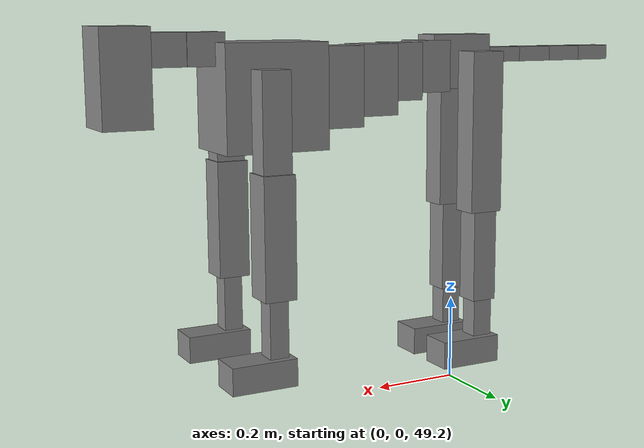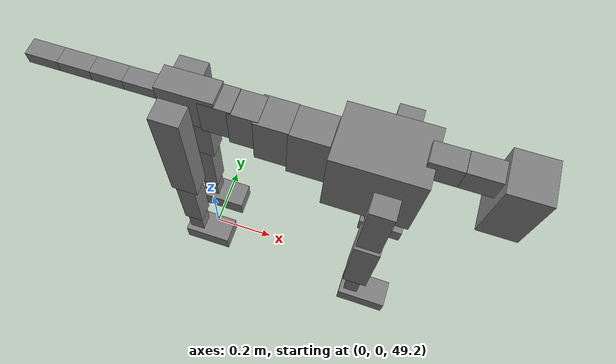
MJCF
<mujoco model="dog">

    <default>
        <joint armature="0.02" stiffness="1" damping="0.2" limited="true"/>
        <geom condim="3" friction="1 0.05 0.05" margin="0.01"/>
        <motor ctrllimited="true" ctrlrange="-1.0 1.0" forcelimited="true" gear="50"/>
    </default>

    <compiler inertiafromgeom="true" angle="radian"/>

    <option timestep="0.016" iterations="50" tolerance="1e-10" solver="Newton" jacobian="dense" cone="pyramidal"/>

    <size nconmax="20000" njmax="60000" nstack="5000000"/>
    <visual>
        <map force="0.1" zfar="30"/>
        <rgba haze="0.15 0.25 0.35 1"/>
        <quality shadowsize="2048"/>
        <global offwidth="800" offheight="800"/>
    </visual>

    <asset>
        <texture type="skybox" builtin="gradient" rgb1="0.3 0.5 0.7" rgb2="0 0 0" width="512" height="512"/>
        <texture name="texplane" type="2d" builtin="checker" rgb1=".2 .3 .4" rgb2=".1 0.15 0.2" width="512" height="512"
                 mark="cross" markrgb=".8 .8 .8"/>
        <texture name="texgeom" type="cube" builtin="flat" mark="cross" width="127" height="1278" rgb1="0.8 0.6 0.4"
                 rgb2="0.8 0.6 0.4" markrgb="1 1 1" random="0.01"/>

        <material name="matplane" reflectance="0.3" texture="texplane" texrepeat="1 1" texuniform="true"/>
        <material name="matgeom" texture="texgeom" texuniform="true" rgba="0.8 0.6 .4 1"/>
    </asset>

    <worldbody>
        <geom name="floor" pos="0 0 0" size="0 0 .25" type="plane" material="matplane" condim="3"/>

        <light directional="false" diffuse=".2 .2 .2" specular="0 0 0" pos="0 0 5" dir="0 0 -1" castshadow="false"/>
        <light mode="targetbodycom" target="torso" directional="false" diffuse=".8 .8 .8" specular="0.3 0.3 0.3"
               pos="0 0 4.0" dir="0 0 -1"/>

        <body name="root" pos="0 0 50">
            <freejoint name="root_1"/>
            <geom type="box" pos="0 0 -0.02" size="0.0774  0.0358  0.063" density="2030"/>

            <body name="spine1" pos="0.054 0 0">
                <joint name="spine1_y" axis="0 1 0" range="0 0.7" limited="true"/>
                <geom type="box" pos="0.02375 0 -0.03" size="0.04375  0.0375  0.05985" density="2030"/>

                <body name="spine2" pos="0.0612 0 0">
                    <joint name="spine2_y" axis="0 1 0" range="-0.15 0.15" limited="true"/>
                    <geom type="box" pos="0.03555  0  -0.04" size="0.04055  0.039  0.06615" density="2030"/>

                    <body name="spine3" pos="0.0730 0 0">
                        <joint name="spine3_y" axis="0 1 0" range="-0.15 0.15" limited="true"/>
                        <geom type="box" pos="0.03555  0  -0.057" size="0.04555  0.0445  0.081" density="2030"/>

                        <body name="spine4" pos="0.0780 0 0">
                            <joint name="spine4_y" axis="0 1 0" range="-0.15 0.15" limited="true"/>
                            <geom type="box" pos="0.05265  0  -0.07" size="0.05265  0.045  0.09135" density="2030"/>

                            <body name="torso" pos="0.1082 0 0">
                                <joint name="torso_y" axis="0 1 0" range="-0.15 0.15" limited="true"/>
                                <geom type="box" pos="0.11925  0  -0.085" size="0.11925  0.085  0.11745"
                                      density="2030"/>

                                <body name="neck1" pos="0.2160  0   0.0180">
                                    <joint name="neck1_y" axis="0 1 0" range="-1.2  -1" limited="true"/>
                                    <geom type="box" pos="0.0423  0  0" size="0.0423  0.03  0.036" density="2325"/>

                                    <body name="neck2" pos="0.0853  0  0">
                                        <joint name="neck2_y" axis="0 1 0" range="0.1  0" limited="true"/>
                                        <geom type="box" pos="0.0423  0  0" size="0.0423  0.03  0.036" density="2325"/>

                                        <body name="head" pos="0.0853  0  0">
                                            <joint name="head_y" axis="0 1 0" range="-0.3  -0.2" limited="true"/>
                                            <geom type="box" pos="0.0531  0  -0.055" size="0.0531  0.06  0.1044"
                                                  density="4030"/>

                                        </body>
                                    </body>
                                </body>

                                <body name="front_shoulder" pos="0.156  0   -0.0480">
                                    <joint name="front_shoulder_y" axis="0 1 0" range="-1 1.5" limited="true"/>
                                    <geom type="box" pos="0 0.13 -0.0951" size="0.0329  0.0282  0.1217" density="1158"/>
                                    <geom type="box" pos="0 -0.13 -0.0951" size="0.0329  0.0282  0.1217"
                                          density="1158"/>

                                    <body name="front_elbow" pos="0  0  -0.1901">
                                        <joint name="front_elbow_y" axis="0 1 0" range="-2 0" limited="true"/>
                                        <geom type="box" pos="0 0.13 -0.1342" size="0.0362  0.0370  0.1342"
                                              density="1081"/>
                                        <geom type="box" pos="0 -0.13 -0.1342" size="0.0362  0.0370  0.1342"
                                              density="1081"/>

                                        <body name="front_wrist" pos="0  0  -0.2685">
                                            <joint name="front_wrist_y" axis="0 1 0" range="-0.2 0" limited="true"/>
                                            <geom type="box" pos="0 0.13 -0.0715" size="0.0216  0.0240  0.0847"
                                                  density="1664"/>
                                            <geom type="box" pos="0 -0.13 -0.0715" size="0.0216  0.0240  0.0847"
                                                  density="1664"/>

                                            <body name="front_finger_end" pos="0  0  -0.1430">
                                                <joint name="front_finger_y" axis="0 1 0" range="-0.4 1"
                                                       limited="true"/>
                                                <geom type="box" pos="0.0407  0.13  -0.0156"
                                                      size="0.0746  0.0407  0.0306" density="1515"/>
                                                <geom type="box" pos="0.0407  -0.13  -0.0156"
                                                      size="0.0746  0.0407  0.0306" density="1515"/>

                                            </body>

                                        </body>
                                    </body>
                                </body>

                            </body>
                        </body>
                    </body>
                </body>
            </body>

            <body name="back_hip" pos="-0.03 0 -0.018">
                <joint name="back_hip_y" axis="0 1 0" range="-1.5 0.3" limited="true"/>
                <geom type="box" pos="0 0.07 -0.1658" size="0.0411  0.0322  0.1886" density="1154"/>
                <geom type="box" pos="0 -0.07 -0.1658" size="0.0411  0.0322  0.1886" density="1154"/>

                <body name="back_knee" pos="0  0  -0.3316">
                    <joint name="back_knee_y" axis="0 1 0" range="0 2.8" limited="true"/>
                    <geom type="box" pos="0 0.07 -0.1109" size="0.0302  0.0298  0.1264" density="1227"/>
                    <geom type="box" pos="0 -0.07 -0.1109" size="0.0302  0.0298  0.1264" density="1227"/>

                    <body name="back_ankle" pos="0  0  -0.2217">
                        <joint name="back_ankle_y" axis="0 1 0" range="-2.2 0" limited="true"/>
                        <geom type="box" pos="0 0.07 -0.0593" size="0.0239  0.0239  0.0706" density="1284"/>
                        <geom type="box" pos="0 -0.07 -0.0593" size="0.0239  0.0239  0.0706" density="1284"/>

                        <body name="back_toe_end" pos="0  0  -0.1187">
                            <joint name="back_toe_y" axis="0 1 0" range="-0.4 1" limited="true"/>
                            <geom type="box" pos="0.0412  0.07  -0.0172" size="0.0755  0.0412  0.0322" density="1515"/>
                            <geom type="box" pos="0.0412  -0.07  -0.0172" size="0.0755  0.0412  0.0322" density="1515"/>

                        </body>
                    </body>
                </body>
            </body>

            <body name="tail1" pos="-0.074 0 -0.006">
                <joint name="tail1_y" axis="0 1 0" range="-0.2 0.2" limited="true"/>
                <geom type="box" pos="-0.0536  0  0" size="0.045  0.025  0.0175" density="1587"/>

                <body name="tail2" pos="-0.09 0 0">
                    <joint name="tail2_y" axis="0 1 0" range="-0.2 0.2" limited="true"/>
                    <geom type="box" pos="-0.0536  0  0" size="0.045  0.025  0.0175" density="1587"/>

                    <body name="tail3" pos="-0.09 0 0">
                        <joint name="tail3_y" axis="0 1 0" range="-0.2 0.2" limited="true"/>
                        <geom type="box" pos="-0.0536  0  0" size="0.045  0.025  0.0175" density="1587"/>

                        <body name="tail4" pos="-0.09 0 0">
                            <joint name="tail4_y" axis="0 1 0" range="-0.2 0.2" limited="true"/>
                            <geom type="box" pos="-0.0536  0  0" size="0.045  0.025  0.0175" density="1587"/>

                        </body>
                    </body>
                </body>
            </body>
        </body>
    </worldbody>

    <actuator>
        <motor joint="spine1_y" forcerange="-150 150     "/>
        <motor joint="spine2_y" forcerange="-150 150     "/>
        <motor joint="spine3_y" forcerange="-150 150     "/>
        <motor joint="spine4_y" forcerange="-150 150     "/>
        <motor joint="torso_y" forcerange="-150 150     "/>
        <motor joint="neck1_y" forcerange="-100 100       "/>
        <motor joint="neck2_y" forcerange="-100 100       "/>
        <motor joint="head_y" forcerange="-150 150       "/>
        <motor joint="front_shoulder_y" forcerange="-163.15 124.59"/>
        <motor joint="front_elbow_y" forcerange="-188.84 180.58"/>
        <motor joint="front_wrist_y" forcerange="-86.29 105.71"/>
        <motor joint="front_finger_y" forcerange="-99.37 77.57"/>
        <motor joint="back_hip_y" forcerange="-337.57 292.03"/>
        <motor joint="back_knee_y" forcerange="-368.22 265.25"/>
        <motor joint="back_angle_y" forcerange="-134.24 148.24"/>
        <motor joint="back_toe_y" forcerange="-126.24 123.36"/>
        <motor joint="tail1_y" forcerange="-50 50     "/>
        <motor joint="tail2_y" forcerange="-50 50     "/>
        <motor joint="tail3_y" forcerange="-50 50     "/>
        <motor joint="tail4_y" forcerange="-50 50     "/>
    </actuator>
</mujoco>
